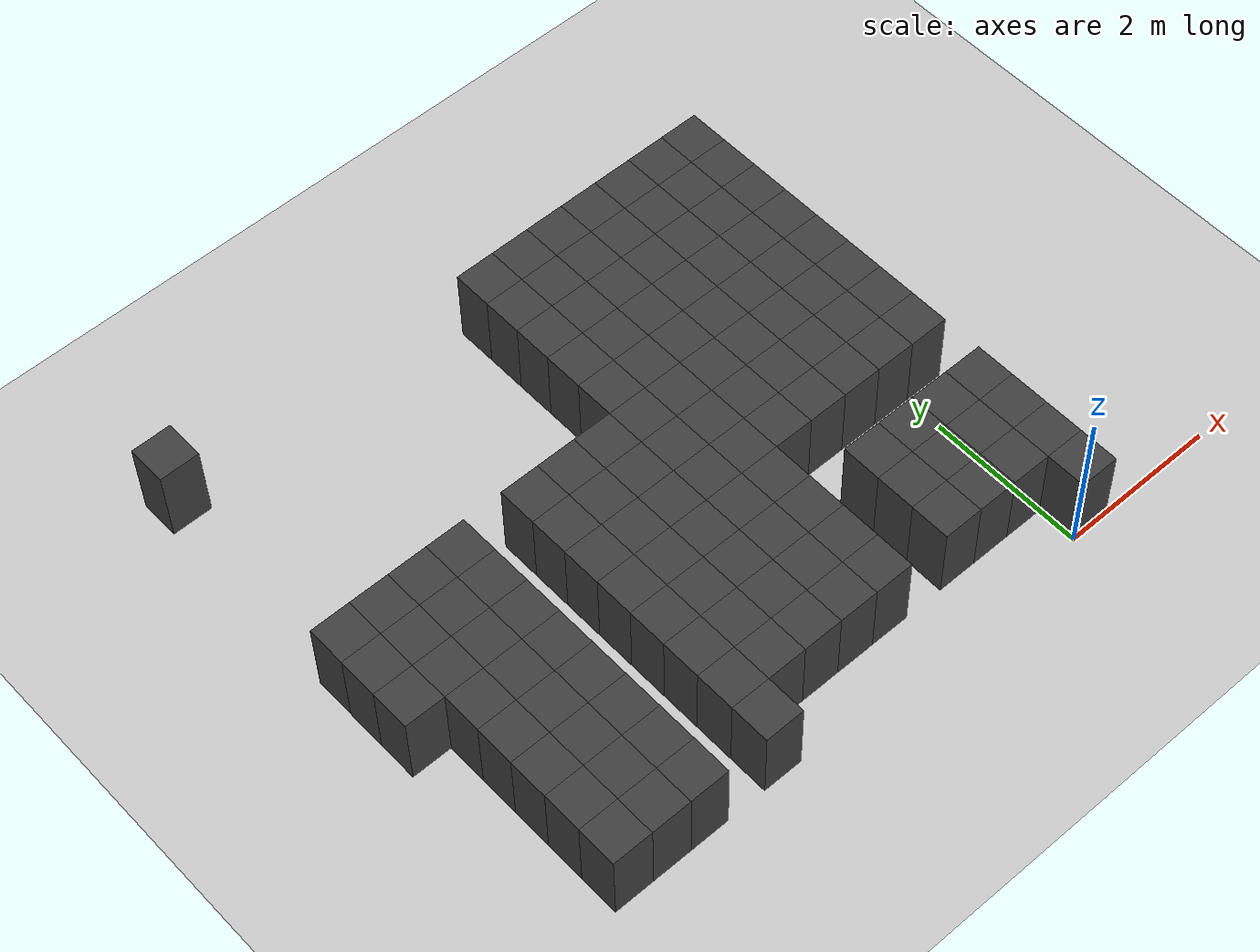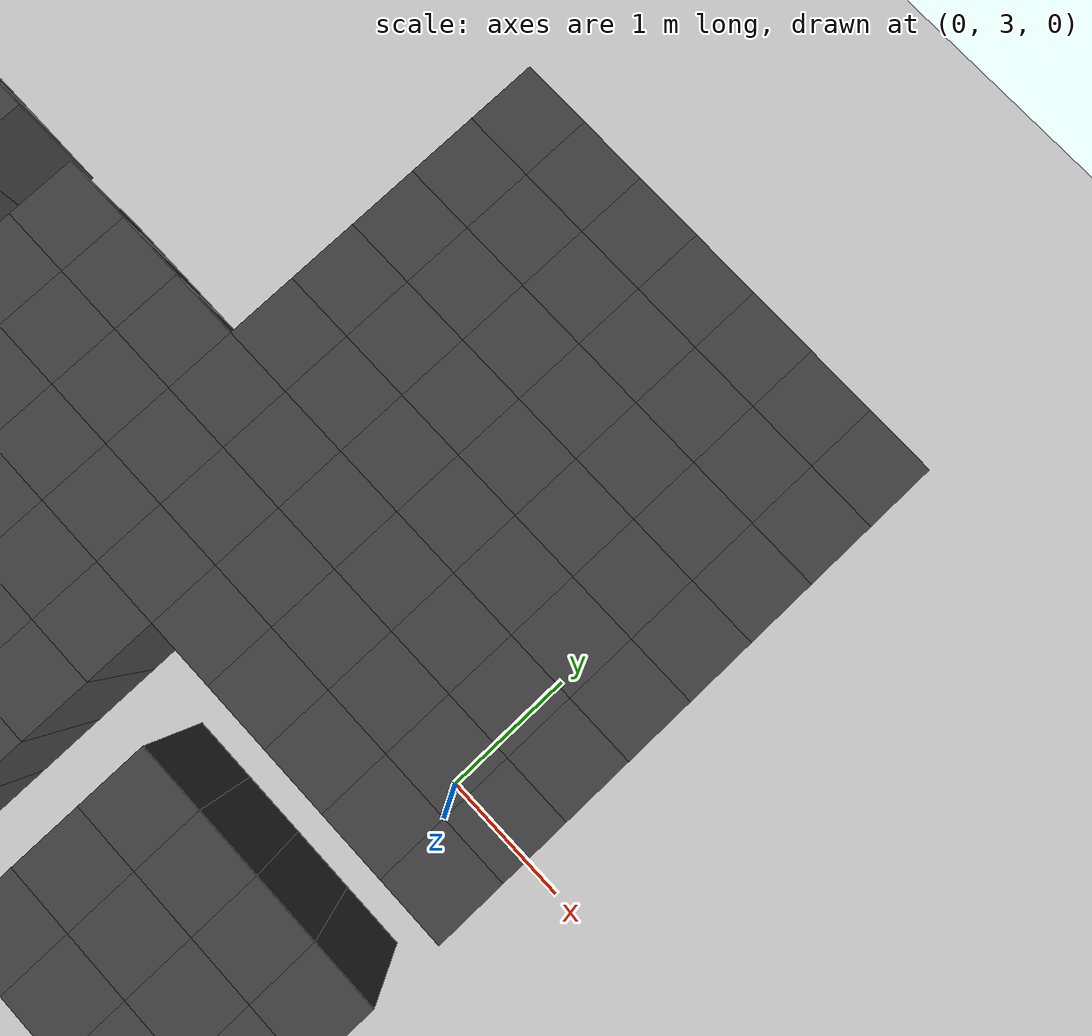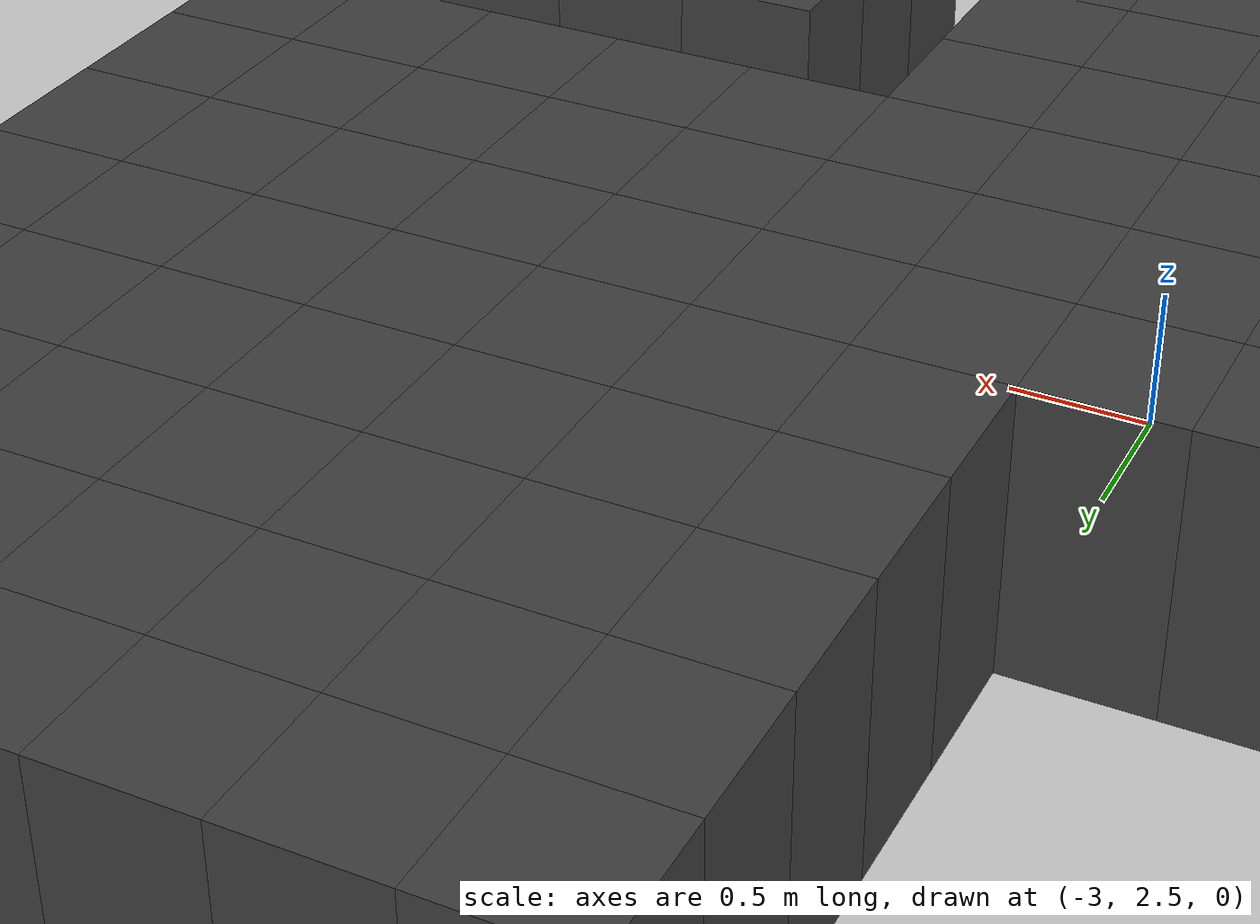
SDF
<sdf version="1.7">
 <world name="map_11779">
  <model name="ground_plane">
   <static>true</static>
   <link name="link">
    <collision name="collision">
     <geometry><plane><normal>0 0 1</normal><size>200 200</size></plane></geometry>
    </collision>
    <visual name="visual">
     <geometry><plane><normal>0 0 1</normal><size>200 200</size></plane></geometry>
     <material><ambient>0.8 0.8 0.8 1</ambient><diffuse>0.8 0.8 0.8 1</diffuse></material>
    </visual>
   </link>
  </model>
  <model name="maze_environment">
   <static>true</static>
   <link name="wall_474">
    <pose>-6.750 6.750 0.500 0 0 0</pose>
    <collision name="col"><geometry><box><size>0.5 0.5 1.0</size></box></geometry></collision>
    <visual name="vis">
     <geometry><box><size>0.5 0.5 1.0</size></box></geometry>
     <material><ambient>0.15 0.15 0.15 1</ambient><diffuse>0.25 0.25 0.25 1</diffuse></material>
    </visual>
   </link>
   <link name="wall_515">
    <pose>-2.750 6.250 0.500 0 0 0</pose>
    <collision name="col"><geometry><box><size>0.5 0.5 1.0</size></box></geometry></collision>
    <visual name="vis">
     <geometry><box><size>0.5 0.5 1.0</size></box></geometry>
     <material><ambient>0.15 0.15 0.15 1</ambient><diffuse>0.25 0.25 0.25 1</diffuse></material>
    </visual>
   </link>
   <link name="wall_516">
    <pose>-2.250 6.250 0.500 0 0 0</pose>
    <collision name="col"><geometry><box><size>0.5 0.5 1.0</size></box></geometry></collision>
    <visual name="vis">
     <geometry><box><size>0.5 0.5 1.0</size></box></geometry>
     <material><ambient>0.15 0.15 0.15 1</ambient><diffuse>0.25 0.25 0.25 1</diffuse></material>
    </visual>
   </link>
   <link name="wall_517">
    <pose>-1.750 6.250 0.500 0 0 0</pose>
    <collision name="col"><geometry><box><size>0.5 0.5 1.0</size></box></geometry></collision>
    <visual name="vis">
     <geometry><box><size>0.5 0.5 1.0</size></box></geometry>
     <material><ambient>0.15 0.15 0.15 1</ambient><diffuse>0.25 0.25 0.25 1</diffuse></material>
    </visual>
   </link>
   <link name="wall_518">
    <pose>-1.250 6.250 0.500 0 0 0</pose>
    <collision name="col"><geometry><box><size>0.5 0.5 1.0</size></box></geometry></collision>
    <visual name="vis">
     <geometry><box><size>0.5 0.5 1.0</size></box></geometry>
     <material><ambient>0.15 0.15 0.15 1</ambient><diffuse>0.25 0.25 0.25 1</diffuse></material>
    </visual>
   </link>
   <link name="wall_519">
    <pose>-0.750 6.250 0.500 0 0 0</pose>
    <collision name="col"><geometry><box><size>0.5 0.5 1.0</size></box></geometry></collision>
    <visual name="vis">
     <geometry><box><size>0.5 0.5 1.0</size></box></geometry>
     <material><ambient>0.15 0.15 0.15 1</ambient><diffuse>0.25 0.25 0.25 1</diffuse></material>
    </visual>
   </link>
   <link name="wall_520">
    <pose>-0.250 6.250 0.500 0 0 0</pose>
    <collision name="col"><geometry><box><size>0.5 0.5 1.0</size></box></geometry></collision>
    <visual name="vis">
     <geometry><box><size>0.5 0.5 1.0</size></box></geometry>
     <material><ambient>0.15 0.15 0.15 1</ambient><diffuse>0.25 0.25 0.25 1</diffuse></material>
    </visual>
   </link>
   <link name="wall_521">
    <pose>0.250 6.250 0.500 0 0 0</pose>
    <collision name="col"><geometry><box><size>0.5 0.5 1.0</size></box></geometry></collision>
    <visual name="vis">
     <geometry><box><size>0.5 0.5 1.0</size></box></geometry>
     <material><ambient>0.15 0.15 0.15 1</ambient><diffuse>0.25 0.25 0.25 1</diffuse></material>
    </visual>
   </link>
   <link name="wall_549">
    <pose>-2.750 5.750 0.500 0 0 0</pose>
    <collision name="col"><geometry><box><size>0.5 0.5 1.0</size></box></geometry></collision>
    <visual name="vis">
     <geometry><box><size>0.5 0.5 1.0</size></box></geometry>
     <material><ambient>0.15 0.15 0.15 1</ambient><diffuse>0.25 0.25 0.25 1</diffuse></material>
    </visual>
   </link>
   <link name="wall_550">
    <pose>-2.250 5.750 0.500 0 0 0</pose>
    <collision name="col"><geometry><box><size>0.5 0.5 1.0</size></box></geometry></collision>
    <visual name="vis">
     <geometry><box><size>0.5 0.5 1.0</size></box></geometry>
     <material><ambient>0.15 0.15 0.15 1</ambient><diffuse>0.25 0.25 0.25 1</diffuse></material>
    </visual>
   </link>
   <link name="wall_551">
    <pose>-1.750 5.750 0.500 0 0 0</pose>
    <collision name="col"><geometry><box><size>0.5 0.5 1.0</size></box></geometry></collision>
    <visual name="vis">
     <geometry><box><size>0.5 0.5 1.0</size></box></geometry>
     <material><ambient>0.15 0.15 0.15 1</ambient><diffuse>0.25 0.25 0.25 1</diffuse></material>
    </visual>
   </link>
   <link name="wall_552">
    <pose>-1.250 5.750 0.500 0 0 0</pose>
    <collision name="col"><geometry><box><size>0.5 0.5 1.0</size></box></geometry></collision>
    <visual name="vis">
     <geometry><box><size>0.5 0.5 1.0</size></box></geometry>
     <material><ambient>0.15 0.15 0.15 1</ambient><diffuse>0.25 0.25 0.25 1</diffuse></material>
    </visual>
   </link>
   <link name="wall_553">
    <pose>-0.750 5.750 0.500 0 0 0</pose>
    <collision name="col"><geometry><box><size>0.5 0.5 1.0</size></box></geometry></collision>
    <visual name="vis">
     <geometry><box><size>0.5 0.5 1.0</size></box></geometry>
     <material><ambient>0.15 0.15 0.15 1</ambient><diffuse>0.25 0.25 0.25 1</diffuse></material>
    </visual>
   </link>
   <link name="wall_554">
    <pose>-0.250 5.750 0.500 0 0 0</pose>
    <collision name="col"><geometry><box><size>0.5 0.5 1.0</size></box></geometry></collision>
    <visual name="vis">
     <geometry><box><size>0.5 0.5 1.0</size></box></geometry>
     <material><ambient>0.15 0.15 0.15 1</ambient><diffuse>0.25 0.25 0.25 1</diffuse></material>
    </visual>
   </link>
   <link name="wall_555">
    <pose>0.250 5.750 0.500 0 0 0</pose>
    <collision name="col"><geometry><box><size>0.5 0.5 1.0</size></box></geometry></collision>
    <visual name="vis">
     <geometry><box><size>0.5 0.5 1.0</size></box></geometry>
     <material><ambient>0.15 0.15 0.15 1</ambient><diffuse>0.25 0.25 0.25 1</diffuse></material>
    </visual>
   </link>
   <link name="wall_583">
    <pose>-2.750 5.250 0.500 0 0 0</pose>
    <collision name="col"><geometry><box><size>0.5 0.5 1.0</size></box></geometry></collision>
    <visual name="vis">
     <geometry><box><size>0.5 0.5 1.0</size></box></geometry>
     <material><ambient>0.15 0.15 0.15 1</ambient><diffuse>0.25 0.25 0.25 1</diffuse></material>
    </visual>
   </link>
   <link name="wall_584">
    <pose>-2.250 5.250 0.500 0 0 0</pose>
    <collision name="col"><geometry><box><size>0.5 0.5 1.0</size></box></geometry></collision>
    <visual name="vis">
     <geometry><box><size>0.5 0.5 1.0</size></box></geometry>
     <material><ambient>0.15 0.15 0.15 1</ambient><diffuse>0.25 0.25 0.25 1</diffuse></material>
    </visual>
   </link>
   <link name="wall_585">
    <pose>-1.750 5.250 0.500 0 0 0</pose>
    <collision name="col"><geometry><box><size>0.5 0.5 1.0</size></box></geometry></collision>
    <visual name="vis">
     <geometry><box><size>0.5 0.5 1.0</size></box></geometry>
     <material><ambient>0.15 0.15 0.15 1</ambient><diffuse>0.25 0.25 0.25 1</diffuse></material>
    </visual>
   </link>
   <link name="wall_586">
    <pose>-1.250 5.250 0.500 0 0 0</pose>
    <collision name="col"><geometry><box><size>0.5 0.5 1.0</size></box></geometry></collision>
    <visual name="vis">
     <geometry><box><size>0.5 0.5 1.0</size></box></geometry>
     <material><ambient>0.15 0.15 0.15 1</ambient><diffuse>0.25 0.25 0.25 1</diffuse></material>
    </visual>
   </link>
   <link name="wall_587">
    <pose>-0.750 5.250 0.500 0 0 0</pose>
    <collision name="col"><geometry><box><size>0.5 0.5 1.0</size></box></geometry></collision>
    <visual name="vis">
     <geometry><box><size>0.5 0.5 1.0</size></box></geometry>
     <material><ambient>0.15 0.15 0.15 1</ambient><diffuse>0.25 0.25 0.25 1</diffuse></material>
    </visual>
   </link>
   <link name="wall_588">
    <pose>-0.250 5.250 0.500 0 0 0</pose>
    <collision name="col"><geometry><box><size>0.5 0.5 1.0</size></box></geometry></collision>
    <visual name="vis">
     <geometry><box><size>0.5 0.5 1.0</size></box></geometry>
     <material><ambient>0.15 0.15 0.15 1</ambient><diffuse>0.25 0.25 0.25 1</diffuse></material>
    </visual>
   </link>
   <link name="wall_589">
    <pose>0.250 5.250 0.500 0 0 0</pose>
    <collision name="col"><geometry><box><size>0.5 0.5 1.0</size></box></geometry></collision>
    <visual name="vis">
     <geometry><box><size>0.5 0.5 1.0</size></box></geometry>
     <material><ambient>0.15 0.15 0.15 1</ambient><diffuse>0.25 0.25 0.25 1</diffuse></material>
    </visual>
   </link>
   <link name="wall_617">
    <pose>-2.750 4.750 0.500 0 0 0</pose>
    <collision name="col"><geometry><box><size>0.5 0.5 1.0</size></box></geometry></collision>
    <visual name="vis">
     <geometry><box><size>0.5 0.5 1.0</size></box></geometry>
     <material><ambient>0.15 0.15 0.15 1</ambient><diffuse>0.25 0.25 0.25 1</diffuse></material>
    </visual>
   </link>
   <link name="wall_618">
    <pose>-2.250 4.750 0.500 0 0 0</pose>
    <collision name="col"><geometry><box><size>0.5 0.5 1.0</size></box></geometry></collision>
    <visual name="vis">
     <geometry><box><size>0.5 0.5 1.0</size></box></geometry>
     <material><ambient>0.15 0.15 0.15 1</ambient><diffuse>0.25 0.25 0.25 1</diffuse></material>
    </visual>
   </link>
   <link name="wall_619">
    <pose>-1.750 4.750 0.500 0 0 0</pose>
    <collision name="col"><geometry><box><size>0.5 0.5 1.0</size></box></geometry></collision>
    <visual name="vis">
     <geometry><box><size>0.5 0.5 1.0</size></box></geometry>
     <material><ambient>0.15 0.15 0.15 1</ambient><diffuse>0.25 0.25 0.25 1</diffuse></material>
    </visual>
   </link>
   <link name="wall_620">
    <pose>-1.250 4.750 0.500 0 0 0</pose>
    <collision name="col"><geometry><box><size>0.5 0.5 1.0</size></box></geometry></collision>
    <visual name="vis">
     <geometry><box><size>0.5 0.5 1.0</size></box></geometry>
     <material><ambient>0.15 0.15 0.15 1</ambient><diffuse>0.25 0.25 0.25 1</diffuse></material>
    </visual>
   </link>
   <link name="wall_621">
    <pose>-0.750 4.750 0.500 0 0 0</pose>
    <collision name="col"><geometry><box><size>0.5 0.5 1.0</size></box></geometry></collision>
    <visual name="vis">
     <geometry><box><size>0.5 0.5 1.0</size></box></geometry>
     <material><ambient>0.15 0.15 0.15 1</ambient><diffuse>0.25 0.25 0.25 1</diffuse></material>
    </visual>
   </link>
   <link name="wall_622">
    <pose>-0.250 4.750 0.500 0 0 0</pose>
    <collision name="col"><geometry><box><size>0.5 0.5 1.0</size></box></geometry></collision>
    <visual name="vis">
     <geometry><box><size>0.5 0.5 1.0</size></box></geometry>
     <material><ambient>0.15 0.15 0.15 1</ambient><diffuse>0.25 0.25 0.25 1</diffuse></material>
    </visual>
   </link>
   <link name="wall_623">
    <pose>0.250 4.750 0.500 0 0 0</pose>
    <collision name="col"><geometry><box><size>0.5 0.5 1.0</size></box></geometry></collision>
    <visual name="vis">
     <geometry><box><size>0.5 0.5 1.0</size></box></geometry>
     <material><ambient>0.15 0.15 0.15 1</ambient><diffuse>0.25 0.25 0.25 1</diffuse></material>
    </visual>
   </link>
   <link name="wall_658">
    <pose>-2.750 4.250 0.500 0 0 0</pose>
    <collision name="col"><geometry><box><size>0.5 0.5 1.0</size></box></geometry></collision>
    <visual name="vis">
     <geometry><box><size>0.5 0.5 1.0</size></box></geometry>
     <material><ambient>0.15 0.15 0.15 1</ambient><diffuse>0.25 0.25 0.25 1</diffuse></material>
    </visual>
   </link>
   <link name="wall_659">
    <pose>-2.250 4.250 0.500 0 0 0</pose>
    <collision name="col"><geometry><box><size>0.5 0.5 1.0</size></box></geometry></collision>
    <visual name="vis">
     <geometry><box><size>0.5 0.5 1.0</size></box></geometry>
     <material><ambient>0.15 0.15 0.15 1</ambient><diffuse>0.25 0.25 0.25 1</diffuse></material>
    </visual>
   </link>
   <link name="wall_660">
    <pose>-1.750 4.250 0.500 0 0 0</pose>
    <collision name="col"><geometry><box><size>0.5 0.5 1.0</size></box></geometry></collision>
    <visual name="vis">
     <geometry><box><size>0.5 0.5 1.0</size></box></geometry>
     <material><ambient>0.15 0.15 0.15 1</ambient><diffuse>0.25 0.25 0.25 1</diffuse></material>
    </visual>
   </link>
   <link name="wall_661">
    <pose>-1.250 4.250 0.500 0 0 0</pose>
    <collision name="col"><geometry><box><size>0.5 0.5 1.0</size></box></geometry></collision>
    <visual name="vis">
     <geometry><box><size>0.5 0.5 1.0</size></box></geometry>
     <material><ambient>0.15 0.15 0.15 1</ambient><diffuse>0.25 0.25 0.25 1</diffuse></material>
    </visual>
   </link>
   <link name="wall_662">
    <pose>-0.750 4.250 0.500 0 0 0</pose>
    <collision name="col"><geometry><box><size>0.5 0.5 1.0</size></box></geometry></collision>
    <visual name="vis">
     <geometry><box><size>0.5 0.5 1.0</size></box></geometry>
     <material><ambient>0.15 0.15 0.15 1</ambient><diffuse>0.25 0.25 0.25 1</diffuse></material>
    </visual>
   </link>
   <link name="wall_663">
    <pose>-0.250 4.250 0.500 0 0 0</pose>
    <collision name="col"><geometry><box><size>0.5 0.5 1.0</size></box></geometry></collision>
    <visual name="vis">
     <geometry><box><size>0.5 0.5 1.0</size></box></geometry>
     <material><ambient>0.15 0.15 0.15 1</ambient><diffuse>0.25 0.25 0.25 1</diffuse></material>
    </visual>
   </link>
   <link name="wall_664">
    <pose>0.250 4.250 0.500 0 0 0</pose>
    <collision name="col"><geometry><box><size>0.5 0.5 1.0</size></box></geometry></collision>
    <visual name="vis">
     <geometry><box><size>0.5 0.5 1.0</size></box></geometry>
     <material><ambient>0.15 0.15 0.15 1</ambient><diffuse>0.25 0.25 0.25 1</diffuse></material>
    </visual>
   </link>
   <link name="wall_699">
    <pose>-6.750 3.750 0.500 0 0 0</pose>
    <collision name="col"><geometry><box><size>0.5 0.5 1.0</size></box></geometry></collision>
    <visual name="vis">
     <geometry><box><size>0.5 0.5 1.0</size></box></geometry>
     <material><ambient>0.15 0.15 0.15 1</ambient><diffuse>0.25 0.25 0.25 1</diffuse></material>
    </visual>
   </link>
   <link name="wall_700">
    <pose>-6.250 3.750 0.500 0 0 0</pose>
    <collision name="col"><geometry><box><size>0.5 0.5 1.0</size></box></geometry></collision>
    <visual name="vis">
     <geometry><box><size>0.5 0.5 1.0</size></box></geometry>
     <material><ambient>0.15 0.15 0.15 1</ambient><diffuse>0.25 0.25 0.25 1</diffuse></material>
    </visual>
   </link>
   <link name="wall_701">
    <pose>-5.750 3.750 0.500 0 0 0</pose>
    <collision name="col"><geometry><box><size>0.5 0.5 1.0</size></box></geometry></collision>
    <visual name="vis">
     <geometry><box><size>0.5 0.5 1.0</size></box></geometry>
     <material><ambient>0.15 0.15 0.15 1</ambient><diffuse>0.25 0.25 0.25 1</diffuse></material>
    </visual>
   </link>
   <link name="wall_702">
    <pose>-5.250 3.750 0.500 0 0 0</pose>
    <collision name="col"><geometry><box><size>0.5 0.5 1.0</size></box></geometry></collision>
    <visual name="vis">
     <geometry><box><size>0.5 0.5 1.0</size></box></geometry>
     <material><ambient>0.15 0.15 0.15 1</ambient><diffuse>0.25 0.25 0.25 1</diffuse></material>
    </visual>
   </link>
   <link name="wall_703">
    <pose>-4.250 3.750 0.500 0 0 0</pose>
    <collision name="col"><geometry><box><size>0.5 0.5 1.0</size></box></geometry></collision>
    <visual name="vis">
     <geometry><box><size>0.5 0.5 1.0</size></box></geometry>
     <material><ambient>0.15 0.15 0.15 1</ambient><diffuse>0.25 0.25 0.25 1</diffuse></material>
    </visual>
   </link>
   <link name="wall_704">
    <pose>-3.750 3.750 0.500 0 0 0</pose>
    <collision name="col"><geometry><box><size>0.5 0.5 1.0</size></box></geometry></collision>
    <visual name="vis">
     <geometry><box><size>0.5 0.5 1.0</size></box></geometry>
     <material><ambient>0.15 0.15 0.15 1</ambient><diffuse>0.25 0.25 0.25 1</diffuse></material>
    </visual>
   </link>
   <link name="wall_705">
    <pose>-3.250 3.750 0.500 0 0 0</pose>
    <collision name="col"><geometry><box><size>0.5 0.5 1.0</size></box></geometry></collision>
    <visual name="vis">
     <geometry><box><size>0.5 0.5 1.0</size></box></geometry>
     <material><ambient>0.15 0.15 0.15 1</ambient><diffuse>0.25 0.25 0.25 1</diffuse></material>
    </visual>
   </link>
   <link name="wall_706">
    <pose>-2.750 3.750 0.500 0 0 0</pose>
    <collision name="col"><geometry><box><size>0.5 0.5 1.0</size></box></geometry></collision>
    <visual name="vis">
     <geometry><box><size>0.5 0.5 1.0</size></box></geometry>
     <material><ambient>0.15 0.15 0.15 1</ambient><diffuse>0.25 0.25 0.25 1</diffuse></material>
    </visual>
   </link>
   <link name="wall_707">
    <pose>-2.250 3.750 0.500 0 0 0</pose>
    <collision name="col"><geometry><box><size>0.5 0.5 1.0</size></box></geometry></collision>
    <visual name="vis">
     <geometry><box><size>0.5 0.5 1.0</size></box></geometry>
     <material><ambient>0.15 0.15 0.15 1</ambient><diffuse>0.25 0.25 0.25 1</diffuse></material>
    </visual>
   </link>
   <link name="wall_708">
    <pose>-1.750 3.750 0.500 0 0 0</pose>
    <collision name="col"><geometry><box><size>0.5 0.5 1.0</size></box></geometry></collision>
    <visual name="vis">
     <geometry><box><size>0.5 0.5 1.0</size></box></geometry>
     <material><ambient>0.15 0.15 0.15 1</ambient><diffuse>0.25 0.25 0.25 1</diffuse></material>
    </visual>
   </link>
   <link name="wall_709">
    <pose>-1.250 3.750 0.500 0 0 0</pose>
    <collision name="col"><geometry><box><size>0.5 0.5 1.0</size></box></geometry></collision>
    <visual name="vis">
     <geometry><box><size>0.5 0.5 1.0</size></box></geometry>
     <material><ambient>0.15 0.15 0.15 1</ambient><diffuse>0.25 0.25 0.25 1</diffuse></material>
    </visual>
   </link>
   <link name="wall_710">
    <pose>-0.750 3.750 0.500 0 0 0</pose>
    <collision name="col"><geometry><box><size>0.5 0.5 1.0</size></box></geometry></collision>
    <visual name="vis">
     <geometry><box><size>0.5 0.5 1.0</size></box></geometry>
     <material><ambient>0.15 0.15 0.15 1</ambient><diffuse>0.25 0.25 0.25 1</diffuse></material>
    </visual>
   </link>
   <link name="wall_711">
    <pose>-0.250 3.750 0.500 0 0 0</pose>
    <collision name="col"><geometry><box><size>0.5 0.5 1.0</size></box></geometry></collision>
    <visual name="vis">
     <geometry><box><size>0.5 0.5 1.0</size></box></geometry>
     <material><ambient>0.15 0.15 0.15 1</ambient><diffuse>0.25 0.25 0.25 1</diffuse></material>
    </visual>
   </link>
   <link name="wall_712">
    <pose>0.250 3.750 0.500 0 0 0</pose>
    <collision name="col"><geometry><box><size>0.5 0.5 1.0</size></box></geometry></collision>
    <visual name="vis">
     <geometry><box><size>0.5 0.5 1.0</size></box></geometry>
     <material><ambient>0.15 0.15 0.15 1</ambient><diffuse>0.25 0.25 0.25 1</diffuse></material>
    </visual>
   </link>
   <link name="wall_742">
    <pose>-6.750 3.250 0.500 0 0 0</pose>
    <collision name="col"><geometry><box><size>0.5 0.5 1.0</size></box></geometry></collision>
    <visual name="vis">
     <geometry><box><size>0.5 0.5 1.0</size></box></geometry>
     <material><ambient>0.15 0.15 0.15 1</ambient><diffuse>0.25 0.25 0.25 1</diffuse></material>
    </visual>
   </link>
   <link name="wall_743">
    <pose>-6.250 3.250 0.500 0 0 0</pose>
    <collision name="col"><geometry><box><size>0.5 0.5 1.0</size></box></geometry></collision>
    <visual name="vis">
     <geometry><box><size>0.5 0.5 1.0</size></box></geometry>
     <material><ambient>0.15 0.15 0.15 1</ambient><diffuse>0.25 0.25 0.25 1</diffuse></material>
    </visual>
   </link>
   <link name="wall_744">
    <pose>-5.750 3.250 0.500 0 0 0</pose>
    <collision name="col"><geometry><box><size>0.5 0.5 1.0</size></box></geometry></collision>
    <visual name="vis">
     <geometry><box><size>0.5 0.5 1.0</size></box></geometry>
     <material><ambient>0.15 0.15 0.15 1</ambient><diffuse>0.25 0.25 0.25 1</diffuse></material>
    </visual>
   </link>
   <link name="wall_745">
    <pose>-5.250 3.250 0.500 0 0 0</pose>
    <collision name="col"><geometry><box><size>0.5 0.5 1.0</size></box></geometry></collision>
    <visual name="vis">
     <geometry><box><size>0.5 0.5 1.0</size></box></geometry>
     <material><ambient>0.15 0.15 0.15 1</ambient><diffuse>0.25 0.25 0.25 1</diffuse></material>
    </visual>
   </link>
   <link name="wall_746">
    <pose>-4.250 3.250 0.500 0 0 0</pose>
    <collision name="col"><geometry><box><size>0.5 0.5 1.0</size></box></geometry></collision>
    <visual name="vis">
     <geometry><box><size>0.5 0.5 1.0</size></box></geometry>
     <material><ambient>0.15 0.15 0.15 1</ambient><diffuse>0.25 0.25 0.25 1</diffuse></material>
    </visual>
   </link>
   <link name="wall_747">
    <pose>-3.750 3.250 0.500 0 0 0</pose>
    <collision name="col"><geometry><box><size>0.5 0.5 1.0</size></box></geometry></collision>
    <visual name="vis">
     <geometry><box><size>0.5 0.5 1.0</size></box></geometry>
     <material><ambient>0.15 0.15 0.15 1</ambient><diffuse>0.25 0.25 0.25 1</diffuse></material>
    </visual>
   </link>
   <link name="wall_748">
    <pose>-3.250 3.250 0.500 0 0 0</pose>
    <collision name="col"><geometry><box><size>0.5 0.5 1.0</size></box></geometry></collision>
    <visual name="vis">
     <geometry><box><size>0.5 0.5 1.0</size></box></geometry>
     <material><ambient>0.15 0.15 0.15 1</ambient><diffuse>0.25 0.25 0.25 1</diffuse></material>
    </visual>
   </link>
   <link name="wall_749">
    <pose>-2.750 3.250 0.500 0 0 0</pose>
    <collision name="col"><geometry><box><size>0.5 0.5 1.0</size></box></geometry></collision>
    <visual name="vis">
     <geometry><box><size>0.5 0.5 1.0</size></box></geometry>
     <material><ambient>0.15 0.15 0.15 1</ambient><diffuse>0.25 0.25 0.25 1</diffuse></material>
    </visual>
   </link>
   <link name="wall_750">
    <pose>-2.250 3.250 0.500 0 0 0</pose>
    <collision name="col"><geometry><box><size>0.5 0.5 1.0</size></box></geometry></collision>
    <visual name="vis">
     <geometry><box><size>0.5 0.5 1.0</size></box></geometry>
     <material><ambient>0.15 0.15 0.15 1</ambient><diffuse>0.25 0.25 0.25 1</diffuse></material>
    </visual>
   </link>
   <link name="wall_751">
    <pose>-1.750 3.250 0.500 0 0 0</pose>
    <collision name="col"><geometry><box><size>0.5 0.5 1.0</size></box></geometry></collision>
    <visual name="vis">
     <geometry><box><size>0.5 0.5 1.0</size></box></geometry>
     <material><ambient>0.15 0.15 0.15 1</ambient><diffuse>0.25 0.25 0.25 1</diffuse></material>
    </visual>
   </link>
   <link name="wall_752">
    <pose>-1.250 3.250 0.500 0 0 0</pose>
    <collision name="col"><geometry><box><size>0.5 0.5 1.0</size></box></geometry></collision>
    <visual name="vis">
     <geometry><box><size>0.5 0.5 1.0</size></box></geometry>
     <material><ambient>0.15 0.15 0.15 1</ambient><diffuse>0.25 0.25 0.25 1</diffuse></material>
    </visual>
   </link>
   <link name="wall_753">
    <pose>-0.750 3.250 0.500 0 0 0</pose>
    <collision name="col"><geometry><box><size>0.5 0.5 1.0</size></box></geometry></collision>
    <visual name="vis">
     <geometry><box><size>0.5 0.5 1.0</size></box></geometry>
     <material><ambient>0.15 0.15 0.15 1</ambient><diffuse>0.25 0.25 0.25 1</diffuse></material>
    </visual>
   </link>
   <link name="wall_754">
    <pose>-0.250 3.250 0.500 0 0 0</pose>
    <collision name="col"><geometry><box><size>0.5 0.5 1.0</size></box></geometry></collision>
    <visual name="vis">
     <geometry><box><size>0.5 0.5 1.0</size></box></geometry>
     <material><ambient>0.15 0.15 0.15 1</ambient><diffuse>0.25 0.25 0.25 1</diffuse></material>
    </visual>
   </link>
   <link name="wall_755">
    <pose>0.250 3.250 0.500 0 0 0</pose>
    <collision name="col"><geometry><box><size>0.5 0.5 1.0</size></box></geometry></collision>
    <visual name="vis">
     <geometry><box><size>0.5 0.5 1.0</size></box></geometry>
     <material><ambient>0.15 0.15 0.15 1</ambient><diffuse>0.25 0.25 0.25 1</diffuse></material>
    </visual>
   </link>
   <link name="wall_785">
    <pose>-6.750 2.750 0.500 0 0 0</pose>
    <collision name="col"><geometry><box><size>0.5 0.5 1.0</size></box></geometry></collision>
    <visual name="vis">
     <geometry><box><size>0.5 0.5 1.0</size></box></geometry>
     <material><ambient>0.15 0.15 0.15 1</ambient><diffuse>0.25 0.25 0.25 1</diffuse></material>
    </visual>
   </link>
   <link name="wall_786">
    <pose>-6.250 2.750 0.500 0 0 0</pose>
    <collision name="col"><geometry><box><size>0.5 0.5 1.0</size></box></geometry></collision>
    <visual name="vis">
     <geometry><box><size>0.5 0.5 1.0</size></box></geometry>
     <material><ambient>0.15 0.15 0.15 1</ambient><diffuse>0.25 0.25 0.25 1</diffuse></material>
    </visual>
   </link>
   <link name="wall_787">
    <pose>-5.750 2.750 0.500 0 0 0</pose>
    <collision name="col"><geometry><box><size>0.5 0.5 1.0</size></box></geometry></collision>
    <visual name="vis">
     <geometry><box><size>0.5 0.5 1.0</size></box></geometry>
     <material><ambient>0.15 0.15 0.15 1</ambient><diffuse>0.25 0.25 0.25 1</diffuse></material>
    </visual>
   </link>
   <link name="wall_788">
    <pose>-5.250 2.750 0.500 0 0 0</pose>
    <collision name="col"><geometry><box><size>0.5 0.5 1.0</size></box></geometry></collision>
    <visual name="vis">
     <geometry><box><size>0.5 0.5 1.0</size></box></geometry>
     <material><ambient>0.15 0.15 0.15 1</ambient><diffuse>0.25 0.25 0.25 1</diffuse></material>
    </visual>
   </link>
   <link name="wall_789">
    <pose>-4.250 2.750 0.500 0 0 0</pose>
    <collision name="col"><geometry><box><size>0.5 0.5 1.0</size></box></geometry></collision>
    <visual name="vis">
     <geometry><box><size>0.5 0.5 1.0</size></box></geometry>
     <material><ambient>0.15 0.15 0.15 1</ambient><diffuse>0.25 0.25 0.25 1</diffuse></material>
    </visual>
   </link>
   <link name="wall_790">
    <pose>-3.750 2.750 0.500 0 0 0</pose>
    <collision name="col"><geometry><box><size>0.5 0.5 1.0</size></box></geometry></collision>
    <visual name="vis">
     <geometry><box><size>0.5 0.5 1.0</size></box></geometry>
     <material><ambient>0.15 0.15 0.15 1</ambient><diffuse>0.25 0.25 0.25 1</diffuse></material>
    </visual>
   </link>
   <link name="wall_791">
    <pose>-3.250 2.750 0.500 0 0 0</pose>
    <collision name="col"><geometry><box><size>0.5 0.5 1.0</size></box></geometry></collision>
    <visual name="vis">
     <geometry><box><size>0.5 0.5 1.0</size></box></geometry>
     <material><ambient>0.15 0.15 0.15 1</ambient><diffuse>0.25 0.25 0.25 1</diffuse></material>
    </visual>
   </link>
   <link name="wall_792">
    <pose>-2.750 2.750 0.500 0 0 0</pose>
    <collision name="col"><geometry><box><size>0.5 0.5 1.0</size></box></geometry></collision>
    <visual name="vis">
     <geometry><box><size>0.5 0.5 1.0</size></box></geometry>
     <material><ambient>0.15 0.15 0.15 1</ambient><diffuse>0.25 0.25 0.25 1</diffuse></material>
    </visual>
   </link>
   <link name="wall_793">
    <pose>-2.250 2.750 0.500 0 0 0</pose>
    <collision name="col"><geometry><box><size>0.5 0.5 1.0</size></box></geometry></collision>
    <visual name="vis">
     <geometry><box><size>0.5 0.5 1.0</size></box></geometry>
     <material><ambient>0.15 0.15 0.15 1</ambient><diffuse>0.25 0.25 0.25 1</diffuse></material>
    </visual>
   </link>
   <link name="wall_794">
    <pose>-1.750 2.750 0.500 0 0 0</pose>
    <collision name="col"><geometry><box><size>0.5 0.5 1.0</size></box></geometry></collision>
    <visual name="vis">
     <geometry><box><size>0.5 0.5 1.0</size></box></geometry>
     <material><ambient>0.15 0.15 0.15 1</ambient><diffuse>0.25 0.25 0.25 1</diffuse></material>
    </visual>
   </link>
   <link name="wall_795">
    <pose>-1.250 2.750 0.500 0 0 0</pose>
    <collision name="col"><geometry><box><size>0.5 0.5 1.0</size></box></geometry></collision>
    <visual name="vis">
     <geometry><box><size>0.5 0.5 1.0</size></box></geometry>
     <material><ambient>0.15 0.15 0.15 1</ambient><diffuse>0.25 0.25 0.25 1</diffuse></material>
    </visual>
   </link>
   <link name="wall_796">
    <pose>-0.750 2.750 0.500 0 0 0</pose>
    <collision name="col"><geometry><box><size>0.5 0.5 1.0</size></box></geometry></collision>
    <visual name="vis">
     <geometry><box><size>0.5 0.5 1.0</size></box></geometry>
     <material><ambient>0.15 0.15 0.15 1</ambient><diffuse>0.25 0.25 0.25 1</diffuse></material>
    </visual>
   </link>
   <link name="wall_797">
    <pose>-0.250 2.750 0.500 0 0 0</pose>
    <collision name="col"><geometry><box><size>0.5 0.5 1.0</size></box></geometry></collision>
    <visual name="vis">
     <geometry><box><size>0.5 0.5 1.0</size></box></geometry>
     <material><ambient>0.15 0.15 0.15 1</ambient><diffuse>0.25 0.25 0.25 1</diffuse></material>
    </visual>
   </link>
   <link name="wall_798">
    <pose>0.250 2.750 0.500 0 0 0</pose>
    <collision name="col"><geometry><box><size>0.5 0.5 1.0</size></box></geometry></collision>
    <visual name="vis">
     <geometry><box><size>0.5 0.5 1.0</size></box></geometry>
     <material><ambient>0.15 0.15 0.15 1</ambient><diffuse>0.25 0.25 0.25 1</diffuse></material>
    </visual>
   </link>
   <link name="wall_829">
    <pose>-6.250 2.250 0.500 0 0 0</pose>
    <collision name="col"><geometry><box><size>0.5 0.5 1.0</size></box></geometry></collision>
    <visual name="vis">
     <geometry><box><size>0.5 0.5 1.0</size></box></geometry>
     <material><ambient>0.15 0.15 0.15 1</ambient><diffuse>0.25 0.25 0.25 1</diffuse></material>
    </visual>
   </link>
   <link name="wall_830">
    <pose>-5.750 2.250 0.500 0 0 0</pose>
    <collision name="col"><geometry><box><size>0.5 0.5 1.0</size></box></geometry></collision>
    <visual name="vis">
     <geometry><box><size>0.5 0.5 1.0</size></box></geometry>
     <material><ambient>0.15 0.15 0.15 1</ambient><diffuse>0.25 0.25 0.25 1</diffuse></material>
    </visual>
   </link>
   <link name="wall_831">
    <pose>-5.250 2.250 0.500 0 0 0</pose>
    <collision name="col"><geometry><box><size>0.5 0.5 1.0</size></box></geometry></collision>
    <visual name="vis">
     <geometry><box><size>0.5 0.5 1.0</size></box></geometry>
     <material><ambient>0.15 0.15 0.15 1</ambient><diffuse>0.25 0.25 0.25 1</diffuse></material>
    </visual>
   </link>
   <link name="wall_832">
    <pose>-4.250 2.250 0.500 0 0 0</pose>
    <collision name="col"><geometry><box><size>0.5 0.5 1.0</size></box></geometry></collision>
    <visual name="vis">
     <geometry><box><size>0.5 0.5 1.0</size></box></geometry>
     <material><ambient>0.15 0.15 0.15 1</ambient><diffuse>0.25 0.25 0.25 1</diffuse></material>
    </visual>
   </link>
   <link name="wall_833">
    <pose>-3.750 2.250 0.500 0 0 0</pose>
    <collision name="col"><geometry><box><size>0.5 0.5 1.0</size></box></geometry></collision>
    <visual name="vis">
     <geometry><box><size>0.5 0.5 1.0</size></box></geometry>
     <material><ambient>0.15 0.15 0.15 1</ambient><diffuse>0.25 0.25 0.25 1</diffuse></material>
    </visual>
   </link>
   <link name="wall_834">
    <pose>-3.250 2.250 0.500 0 0 0</pose>
    <collision name="col"><geometry><box><size>0.5 0.5 1.0</size></box></geometry></collision>
    <visual name="vis">
     <geometry><box><size>0.5 0.5 1.0</size></box></geometry>
     <material><ambient>0.15 0.15 0.15 1</ambient><diffuse>0.25 0.25 0.25 1</diffuse></material>
    </visual>
   </link>
   <link name="wall_835">
    <pose>-2.750 2.250 0.500 0 0 0</pose>
    <collision name="col"><geometry><box><size>0.5 0.5 1.0</size></box></geometry></collision>
    <visual name="vis">
     <geometry><box><size>0.5 0.5 1.0</size></box></geometry>
     <material><ambient>0.15 0.15 0.15 1</ambient><diffuse>0.25 0.25 0.25 1</diffuse></material>
    </visual>
   </link>
   <link name="wall_836">
    <pose>-2.250 2.250 0.500 0 0 0</pose>
    <collision name="col"><geometry><box><size>0.5 0.5 1.0</size></box></geometry></collision>
    <visual name="vis">
     <geometry><box><size>0.5 0.5 1.0</size></box></geometry>
     <material><ambient>0.15 0.15 0.15 1</ambient><diffuse>0.25 0.25 0.25 1</diffuse></material>
    </visual>
   </link>
   <link name="wall_858">
    <pose>-6.250 1.750 0.500 0 0 0</pose>
    <collision name="col"><geometry><box><size>0.5 0.5 1.0</size></box></geometry></collision>
    <visual name="vis">
     <geometry><box><size>0.5 0.5 1.0</size></box></geometry>
     <material><ambient>0.15 0.15 0.15 1</ambient><diffuse>0.25 0.25 0.25 1</diffuse></material>
    </visual>
   </link>
   <link name="wall_859">
    <pose>-5.750 1.750 0.500 0 0 0</pose>
    <collision name="col"><geometry><box><size>0.5 0.5 1.0</size></box></geometry></collision>
    <visual name="vis">
     <geometry><box><size>0.5 0.5 1.0</size></box></geometry>
     <material><ambient>0.15 0.15 0.15 1</ambient><diffuse>0.25 0.25 0.25 1</diffuse></material>
    </visual>
   </link>
   <link name="wall_860">
    <pose>-5.250 1.750 0.500 0 0 0</pose>
    <collision name="col"><geometry><box><size>0.5 0.5 1.0</size></box></geometry></collision>
    <visual name="vis">
     <geometry><box><size>0.5 0.5 1.0</size></box></geometry>
     <material><ambient>0.15 0.15 0.15 1</ambient><diffuse>0.25 0.25 0.25 1</diffuse></material>
    </visual>
   </link>
   <link name="wall_861">
    <pose>-4.250 1.750 0.500 0 0 0</pose>
    <collision name="col"><geometry><box><size>0.5 0.5 1.0</size></box></geometry></collision>
    <visual name="vis">
     <geometry><box><size>0.5 0.5 1.0</size></box></geometry>
     <material><ambient>0.15 0.15 0.15 1</ambient><diffuse>0.25 0.25 0.25 1</diffuse></material>
    </visual>
   </link>
   <link name="wall_862">
    <pose>-3.750 1.750 0.500 0 0 0</pose>
    <collision name="col"><geometry><box><size>0.5 0.5 1.0</size></box></geometry></collision>
    <visual name="vis">
     <geometry><box><size>0.5 0.5 1.0</size></box></geometry>
     <material><ambient>0.15 0.15 0.15 1</ambient><diffuse>0.25 0.25 0.25 1</diffuse></material>
    </visual>
   </link>
   <link name="wall_863">
    <pose>-3.250 1.750 0.500 0 0 0</pose>
    <collision name="col"><geometry><box><size>0.5 0.5 1.0</size></box></geometry></collision>
    <visual name="vis">
     <geometry><box><size>0.5 0.5 1.0</size></box></geometry>
     <material><ambient>0.15 0.15 0.15 1</ambient><diffuse>0.25 0.25 0.25 1</diffuse></material>
    </visual>
   </link>
   <link name="wall_864">
    <pose>-2.750 1.750 0.500 0 0 0</pose>
    <collision name="col"><geometry><box><size>0.5 0.5 1.0</size></box></geometry></collision>
    <visual name="vis">
     <geometry><box><size>0.5 0.5 1.0</size></box></geometry>
     <material><ambient>0.15 0.15 0.15 1</ambient><diffuse>0.25 0.25 0.25 1</diffuse></material>
    </visual>
   </link>
   <link name="wall_865">
    <pose>-2.250 1.750 0.500 0 0 0</pose>
    <collision name="col"><geometry><box><size>0.5 0.5 1.0</size></box></geometry></collision>
    <visual name="vis">
     <geometry><box><size>0.5 0.5 1.0</size></box></geometry>
     <material><ambient>0.15 0.15 0.15 1</ambient><diffuse>0.25 0.25 0.25 1</diffuse></material>
    </visual>
   </link>
   <link name="wall_866">
    <pose>-1.250 1.750 0.500 0 0 0</pose>
    <collision name="col"><geometry><box><size>0.5 0.5 1.0</size></box></geometry></collision>
    <visual name="vis">
     <geometry><box><size>0.5 0.5 1.0</size></box></geometry>
     <material><ambient>0.15 0.15 0.15 1</ambient><diffuse>0.25 0.25 0.25 1</diffuse></material>
    </visual>
   </link>
   <link name="wall_867">
    <pose>-0.750 1.750 0.500 0 0 0</pose>
    <collision name="col"><geometry><box><size>0.5 0.5 1.0</size></box></geometry></collision>
    <visual name="vis">
     <geometry><box><size>0.5 0.5 1.0</size></box></geometry>
     <material><ambient>0.15 0.15 0.15 1</ambient><diffuse>0.25 0.25 0.25 1</diffuse></material>
    </visual>
   </link>
   <link name="wall_868">
    <pose>-0.250 1.750 0.500 0 0 0</pose>
    <collision name="col"><geometry><box><size>0.5 0.5 1.0</size></box></geometry></collision>
    <visual name="vis">
     <geometry><box><size>0.5 0.5 1.0</size></box></geometry>
     <material><ambient>0.15 0.15 0.15 1</ambient><diffuse>0.25 0.25 0.25 1</diffuse></material>
    </visual>
   </link>
   <link name="wall_869">
    <pose>0.250 1.750 0.500 0 0 0</pose>
    <collision name="col"><geometry><box><size>0.5 0.5 1.0</size></box></geometry></collision>
    <visual name="vis">
     <geometry><box><size>0.5 0.5 1.0</size></box></geometry>
     <material><ambient>0.15 0.15 0.15 1</ambient><diffuse>0.25 0.25 0.25 1</diffuse></material>
    </visual>
   </link>
   <link name="wall_900">
    <pose>-6.250 1.250 0.500 0 0 0</pose>
    <collision name="col"><geometry><box><size>0.5 0.5 1.0</size></box></geometry></collision>
    <visual name="vis">
     <geometry><box><size>0.5 0.5 1.0</size></box></geometry>
     <material><ambient>0.15 0.15 0.15 1</ambient><diffuse>0.25 0.25 0.25 1</diffuse></material>
    </visual>
   </link>
   <link name="wall_901">
    <pose>-5.750 1.250 0.500 0 0 0</pose>
    <collision name="col"><geometry><box><size>0.5 0.5 1.0</size></box></geometry></collision>
    <visual name="vis">
     <geometry><box><size>0.5 0.5 1.0</size></box></geometry>
     <material><ambient>0.15 0.15 0.15 1</ambient><diffuse>0.25 0.25 0.25 1</diffuse></material>
    </visual>
   </link>
   <link name="wall_902">
    <pose>-5.250 1.250 0.500 0 0 0</pose>
    <collision name="col"><geometry><box><size>0.5 0.5 1.0</size></box></geometry></collision>
    <visual name="vis">
     <geometry><box><size>0.5 0.5 1.0</size></box></geometry>
     <material><ambient>0.15 0.15 0.15 1</ambient><diffuse>0.25 0.25 0.25 1</diffuse></material>
    </visual>
   </link>
   <link name="wall_903">
    <pose>-4.250 1.250 0.500 0 0 0</pose>
    <collision name="col"><geometry><box><size>0.5 0.5 1.0</size></box></geometry></collision>
    <visual name="vis">
     <geometry><box><size>0.5 0.5 1.0</size></box></geometry>
     <material><ambient>0.15 0.15 0.15 1</ambient><diffuse>0.25 0.25 0.25 1</diffuse></material>
    </visual>
   </link>
   <link name="wall_904">
    <pose>-3.750 1.250 0.500 0 0 0</pose>
    <collision name="col"><geometry><box><size>0.5 0.5 1.0</size></box></geometry></collision>
    <visual name="vis">
     <geometry><box><size>0.5 0.5 1.0</size></box></geometry>
     <material><ambient>0.15 0.15 0.15 1</ambient><diffuse>0.25 0.25 0.25 1</diffuse></material>
    </visual>
   </link>
   <link name="wall_905">
    <pose>-3.250 1.250 0.500 0 0 0</pose>
    <collision name="col"><geometry><box><size>0.5 0.5 1.0</size></box></geometry></collision>
    <visual name="vis">
     <geometry><box><size>0.5 0.5 1.0</size></box></geometry>
     <material><ambient>0.15 0.15 0.15 1</ambient><diffuse>0.25 0.25 0.25 1</diffuse></material>
    </visual>
   </link>
   <link name="wall_906">
    <pose>-2.750 1.250 0.500 0 0 0</pose>
    <collision name="col"><geometry><box><size>0.5 0.5 1.0</size></box></geometry></collision>
    <visual name="vis">
     <geometry><box><size>0.5 0.5 1.0</size></box></geometry>
     <material><ambient>0.15 0.15 0.15 1</ambient><diffuse>0.25 0.25 0.25 1</diffuse></material>
    </visual>
   </link>
   <link name="wall_907">
    <pose>-2.250 1.250 0.500 0 0 0</pose>
    <collision name="col"><geometry><box><size>0.5 0.5 1.0</size></box></geometry></collision>
    <visual name="vis">
     <geometry><box><size>0.5 0.5 1.0</size></box></geometry>
     <material><ambient>0.15 0.15 0.15 1</ambient><diffuse>0.25 0.25 0.25 1</diffuse></material>
    </visual>
   </link>
   <link name="wall_908">
    <pose>-1.250 1.250 0.500 0 0 0</pose>
    <collision name="col"><geometry><box><size>0.5 0.5 1.0</size></box></geometry></collision>
    <visual name="vis">
     <geometry><box><size>0.5 0.5 1.0</size></box></geometry>
     <material><ambient>0.15 0.15 0.15 1</ambient><diffuse>0.25 0.25 0.25 1</diffuse></material>
    </visual>
   </link>
   <link name="wall_909">
    <pose>-0.750 1.250 0.500 0 0 0</pose>
    <collision name="col"><geometry><box><size>0.5 0.5 1.0</size></box></geometry></collision>
    <visual name="vis">
     <geometry><box><size>0.5 0.5 1.0</size></box></geometry>
     <material><ambient>0.15 0.15 0.15 1</ambient><diffuse>0.25 0.25 0.25 1</diffuse></material>
    </visual>
   </link>
   <link name="wall_910">
    <pose>-0.250 1.250 0.500 0 0 0</pose>
    <collision name="col"><geometry><box><size>0.5 0.5 1.0</size></box></geometry></collision>
    <visual name="vis">
     <geometry><box><size>0.5 0.5 1.0</size></box></geometry>
     <material><ambient>0.15 0.15 0.15 1</ambient><diffuse>0.25 0.25 0.25 1</diffuse></material>
    </visual>
   </link>
   <link name="wall_911">
    <pose>0.250 1.250 0.500 0 0 0</pose>
    <collision name="col"><geometry><box><size>0.5 0.5 1.0</size></box></geometry></collision>
    <visual name="vis">
     <geometry><box><size>0.5 0.5 1.0</size></box></geometry>
     <material><ambient>0.15 0.15 0.15 1</ambient><diffuse>0.25 0.25 0.25 1</diffuse></material>
    </visual>
   </link>
   <link name="wall_942">
    <pose>-6.250 0.750 0.500 0 0 0</pose>
    <collision name="col"><geometry><box><size>0.5 0.5 1.0</size></box></geometry></collision>
    <visual name="vis">
     <geometry><box><size>0.5 0.5 1.0</size></box></geometry>
     <material><ambient>0.15 0.15 0.15 1</ambient><diffuse>0.25 0.25 0.25 1</diffuse></material>
    </visual>
   </link>
   <link name="wall_943">
    <pose>-5.750 0.750 0.500 0 0 0</pose>
    <collision name="col"><geometry><box><size>0.5 0.5 1.0</size></box></geometry></collision>
    <visual name="vis">
     <geometry><box><size>0.5 0.5 1.0</size></box></geometry>
     <material><ambient>0.15 0.15 0.15 1</ambient><diffuse>0.25 0.25 0.25 1</diffuse></material>
    </visual>
   </link>
   <link name="wall_944">
    <pose>-5.250 0.750 0.500 0 0 0</pose>
    <collision name="col"><geometry><box><size>0.5 0.5 1.0</size></box></geometry></collision>
    <visual name="vis">
     <geometry><box><size>0.5 0.5 1.0</size></box></geometry>
     <material><ambient>0.15 0.15 0.15 1</ambient><diffuse>0.25 0.25 0.25 1</diffuse></material>
    </visual>
   </link>
   <link name="wall_945">
    <pose>-4.250 0.750 0.500 0 0 0</pose>
    <collision name="col"><geometry><box><size>0.5 0.5 1.0</size></box></geometry></collision>
    <visual name="vis">
     <geometry><box><size>0.5 0.5 1.0</size></box></geometry>
     <material><ambient>0.15 0.15 0.15 1</ambient><diffuse>0.25 0.25 0.25 1</diffuse></material>
    </visual>
   </link>
   <link name="wall_946">
    <pose>-3.750 0.750 0.500 0 0 0</pose>
    <collision name="col"><geometry><box><size>0.5 0.5 1.0</size></box></geometry></collision>
    <visual name="vis">
     <geometry><box><size>0.5 0.5 1.0</size></box></geometry>
     <material><ambient>0.15 0.15 0.15 1</ambient><diffuse>0.25 0.25 0.25 1</diffuse></material>
    </visual>
   </link>
   <link name="wall_947">
    <pose>-3.250 0.750 0.500 0 0 0</pose>
    <collision name="col"><geometry><box><size>0.5 0.5 1.0</size></box></geometry></collision>
    <visual name="vis">
     <geometry><box><size>0.5 0.5 1.0</size></box></geometry>
     <material><ambient>0.15 0.15 0.15 1</ambient><diffuse>0.25 0.25 0.25 1</diffuse></material>
    </visual>
   </link>
   <link name="wall_948">
    <pose>-2.750 0.750 0.500 0 0 0</pose>
    <collision name="col"><geometry><box><size>0.5 0.5 1.0</size></box></geometry></collision>
    <visual name="vis">
     <geometry><box><size>0.5 0.5 1.0</size></box></geometry>
     <material><ambient>0.15 0.15 0.15 1</ambient><diffuse>0.25 0.25 0.25 1</diffuse></material>
    </visual>
   </link>
   <link name="wall_949">
    <pose>-2.250 0.750 0.500 0 0 0</pose>
    <collision name="col"><geometry><box><size>0.5 0.5 1.0</size></box></geometry></collision>
    <visual name="vis">
     <geometry><box><size>0.5 0.5 1.0</size></box></geometry>
     <material><ambient>0.15 0.15 0.15 1</ambient><diffuse>0.25 0.25 0.25 1</diffuse></material>
    </visual>
   </link>
   <link name="wall_950">
    <pose>-1.250 0.750 0.500 0 0 0</pose>
    <collision name="col"><geometry><box><size>0.5 0.5 1.0</size></box></geometry></collision>
    <visual name="vis">
     <geometry><box><size>0.5 0.5 1.0</size></box></geometry>
     <material><ambient>0.15 0.15 0.15 1</ambient><diffuse>0.25 0.25 0.25 1</diffuse></material>
    </visual>
   </link>
   <link name="wall_951">
    <pose>-0.750 0.750 0.500 0 0 0</pose>
    <collision name="col"><geometry><box><size>0.5 0.5 1.0</size></box></geometry></collision>
    <visual name="vis">
     <geometry><box><size>0.5 0.5 1.0</size></box></geometry>
     <material><ambient>0.15 0.15 0.15 1</ambient><diffuse>0.25 0.25 0.25 1</diffuse></material>
    </visual>
   </link>
   <link name="wall_952">
    <pose>-0.250 0.750 0.500 0 0 0</pose>
    <collision name="col"><geometry><box><size>0.5 0.5 1.0</size></box></geometry></collision>
    <visual name="vis">
     <geometry><box><size>0.5 0.5 1.0</size></box></geometry>
     <material><ambient>0.15 0.15 0.15 1</ambient><diffuse>0.25 0.25 0.25 1</diffuse></material>
    </visual>
   </link>
   <link name="wall_953">
    <pose>0.250 0.750 0.500 0 0 0</pose>
    <collision name="col"><geometry><box><size>0.5 0.5 1.0</size></box></geometry></collision>
    <visual name="vis">
     <geometry><box><size>0.5 0.5 1.0</size></box></geometry>
     <material><ambient>0.15 0.15 0.15 1</ambient><diffuse>0.25 0.25 0.25 1</diffuse></material>
    </visual>
   </link>
   <link name="wall_984">
    <pose>-6.250 0.250 0.500 0 0 0</pose>
    <collision name="col"><geometry><box><size>0.5 0.5 1.0</size></box></geometry></collision>
    <visual name="vis">
     <geometry><box><size>0.5 0.5 1.0</size></box></geometry>
     <material><ambient>0.15 0.15 0.15 1</ambient><diffuse>0.25 0.25 0.25 1</diffuse></material>
    </visual>
   </link>
   <link name="wall_985">
    <pose>-5.750 0.250 0.500 0 0 0</pose>
    <collision name="col"><geometry><box><size>0.5 0.5 1.0</size></box></geometry></collision>
    <visual name="vis">
     <geometry><box><size>0.5 0.5 1.0</size></box></geometry>
     <material><ambient>0.15 0.15 0.15 1</ambient><diffuse>0.25 0.25 0.25 1</diffuse></material>
    </visual>
   </link>
   <link name="wall_986">
    <pose>-5.250 0.250 0.500 0 0 0</pose>
    <collision name="col"><geometry><box><size>0.5 0.5 1.0</size></box></geometry></collision>
    <visual name="vis">
     <geometry><box><size>0.5 0.5 1.0</size></box></geometry>
     <material><ambient>0.15 0.15 0.15 1</ambient><diffuse>0.25 0.25 0.25 1</diffuse></material>
    </visual>
   </link>
   <link name="wall_987">
    <pose>-4.250 0.250 0.500 0 0 0</pose>
    <collision name="col"><geometry><box><size>0.5 0.5 1.0</size></box></geometry></collision>
    <visual name="vis">
     <geometry><box><size>0.5 0.5 1.0</size></box></geometry>
     <material><ambient>0.15 0.15 0.15 1</ambient><diffuse>0.25 0.25 0.25 1</diffuse></material>
    </visual>
   </link>
   <link name="wall_988">
    <pose>0.250 0.250 0.500 0 0 0</pose>
    <collision name="col"><geometry><box><size>0.5 0.5 1.0</size></box></geometry></collision>
    <visual name="vis">
     <geometry><box><size>0.5 0.5 1.0</size></box></geometry>
     <material><ambient>0.15 0.15 0.15 1</ambient><diffuse>0.25 0.25 0.25 1</diffuse></material>
    </visual>
   </link>
  </model>
 </world>
</sdf>
